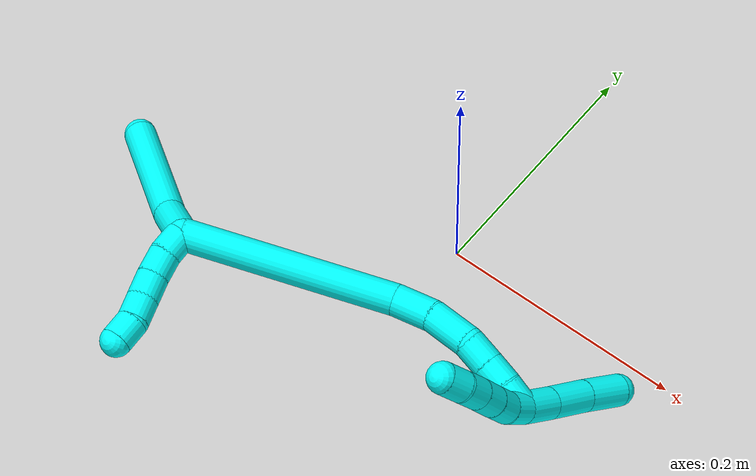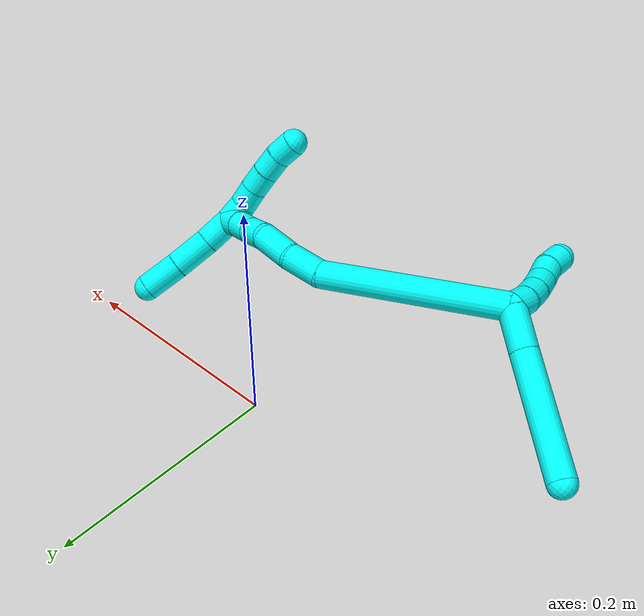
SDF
<sdf version="1.7">
 <world name="default">
  <model name="3">
   <static>0</static>
   <link name="3">
    <collision name="collision-cylinder-e_1_2_8">
     <pose>-0.010146 -0.012704 0.010542 0.878161 -0.551076 -0.264028</pose>
     <geometry><cylinder><radius>0.0125</radius><length>0.038754</length></cylinder></geometry>
     <surface>
      <friction><ode><mu>1.16</mu><mu2>1.16</mu2><slip1>0</slip1><slip2>0</slip2></ode></friction>
      <contact><ode><kp>1e+06</kp><kd>1</kd><max_vel>0</max_vel><min_depth>0.001</min_depth></ode></contact>
     </surface>
    </collision>
    <visual name="visual-cylinder-e_1_2_8">
     <pose>-0.010146 -0.012704 0.010542 0.878161 -0.551076 -0.264028</pose>
     <geometry><cylinder><radius>0.0125</radius><length>0.038754</length></cylinder></geometry>
     <material><ambient>0.003922 1 0.996078 1</ambient></material>
    </visual>
    <collision name="collision-cylinder-e_2_8_6">
     <pose>-0.041758 -0.069423 0.047464 1.03084 -0.3962 -0.226457</pose>
     <geometry><cylinder><radius>0.0125</radius><length>0.111246</length></cylinder></geometry>
     <surface>
      <friction><ode><mu>1.16</mu><mu2>1.16</mu2><slip1>0</slip1><slip2>0</slip2></ode></friction>
      <contact><ode><kp>1e+06</kp><kd>1</kd><max_vel>0</max_vel><min_depth>0.001</min_depth></ode></contact>
     </surface>
    </collision>
    <visual name="visual-cylinder-e_2_8_6">
     <pose>-0.041758 -0.069423 0.047464 1.03084 -0.3962 -0.226457</pose>
     <geometry><cylinder><radius>0.0125</radius><length>0.111246</length></cylinder></geometry>
     <material><ambient>0.003922 1 0.996078 1</ambient></material>
    </visual>
    <collision name="collision-cylinder-e_1_2_9">
     <pose>-0.006503 0.005902 -0.004784 -2.25194 -0.707915 1.31884</pose>
     <geometry><cylinder><radius>0.0125</radius><length>0.02</length></cylinder></geometry>
     <surface>
      <friction><ode><mu>1.16</mu><mu2>1.16</mu2><slip1>0</slip1><slip2>0</slip2></ode></friction>
      <contact><ode><kp>1e+06</kp><kd>1</kd><max_vel>0</max_vel><min_depth>0.001</min_depth></ode></contact>
     </surface>
    </collision>
    <visual name="visual-cylinder-e_1_2_9">
     <pose>-0.006503 0.005902 -0.004784 -2.25194 -0.707915 1.31884</pose>
     <geometry><cylinder><radius>0.0125</radius><length>0.02</length></cylinder></geometry>
     <material><ambient>0.003922 1 0.996078 1</ambient></material>
    </visual>
    <collision name="collision-cylinder-e_2_9_10">
     <pose>-0.018055 0.019227 -0.013971 -2.10622 -0.529394 0.888468</pose>
     <geometry><cylinder><radius>0.0125</radius><length>0.02</length></cylinder></geometry>
     <surface>
      <friction><ode><mu>1.16</mu><mu2>1.16</mu2><slip1>0</slip1><slip2>0</slip2></ode></friction>
      <contact><ode><kp>1e+06</kp><kd>1</kd><max_vel>0</max_vel><min_depth>0.001</min_depth></ode></contact>
     </surface>
    </collision>
    <visual name="visual-cylinder-e_2_9_10">
     <pose>-0.018055 0.019227 -0.013971 -2.10622 -0.529394 0.888468</pose>
     <geometry><cylinder><radius>0.0125</radius><length>0.02</length></cylinder></geometry>
     <material><ambient>0.003922 1 0.996078 1</ambient></material>
    </visual>
    <collision name="collision-cylinder-e_3_10_11">
     <pose>-0.027275 0.034577 -0.022822 -2.082 -0.430153 0.714065</pose>
     <geometry><cylinder><radius>0.0125</radius><length>0.02</length></cylinder></geometry>
     <surface>
      <friction><ode><mu>1.16</mu><mu2>1.16</mu2><slip1>0</slip1><slip2>0</slip2></ode></friction>
      <contact><ode><kp>1e+06</kp><kd>1</kd><max_vel>0</max_vel><min_depth>0.001</min_depth></ode></contact>
     </surface>
    </collision>
    <visual name="visual-cylinder-e_3_10_11">
     <pose>-0.027275 0.034577 -0.022822 -2.082 -0.430153 0.714065</pose>
     <geometry><cylinder><radius>0.0125</radius><length>0.02</length></cylinder></geometry>
     <material><ambient>0.003922 1 0.996078 1</ambient></material>
    </visual>
    <collision name="collision-cylinder-e_4_11_12">
     <pose>-0.034556 0.050363 -0.032612 -2.16798 -0.316342 0.58539</pose>
     <geometry><cylinder><radius>0.0125</radius><length>0.02</length></cylinder></geometry>
     <surface>
      <friction><ode><mu>1.16</mu><mu2>1.16</mu2><slip1>0</slip1><slip2>0</slip2></ode></friction>
      <contact><ode><kp>1e+06</kp><kd>1</kd><max_vel>0</max_vel><min_depth>0.001</min_depth></ode></contact>
     </surface>
    </collision>
    <visual name="visual-cylinder-e_4_11_12">
     <pose>-0.034556 0.050363 -0.032612 -2.16798 -0.316342 0.58539</pose>
     <geometry><cylinder><radius>0.0125</radius><length>0.02</length></cylinder></geometry>
     <material><ambient>0.003922 1 0.996078 1</ambient></material>
    </visual>
    <collision name="collision-cylinder-e_5_12_5">
     <pose>-0.042961 0.064282 -0.043894 -2.34597 -0.557893 1.19652</pose>
     <geometry><cylinder><radius>0.0125</radius><length>0.02</length></cylinder></geometry>
     <surface>
      <friction><ode><mu>1.16</mu><mu2>1.16</mu2><slip1>0</slip1><slip2>0</slip2></ode></friction>
      <contact><ode><kp>1e+06</kp><kd>1</kd><max_vel>0</max_vel><min_depth>0.001</min_depth></ode></contact>
     </surface>
    </collision>
    <visual name="visual-cylinder-e_5_12_5">
     <pose>-0.042961 0.064282 -0.043894 -2.34597 -0.557893 1.19652</pose>
     <geometry><cylinder><radius>0.0125</radius><length>0.02</length></cylinder></geometry>
     <material><ambient>0.003922 1 0.996078 1</ambient></material>
    </visual>
    <collision name="collision-cylinder-e_1_2_13">
     <pose>0.057502 0.04575 0.041172 -0.838018 0.751427 -0.347815</pose>
     <geometry><cylinder><radius>0.0125</radius><length>0.16846</length></cylinder></geometry>
     <surface>
      <friction><ode><mu>1.16</mu><mu2>1.16</mu2><slip1>0</slip1><slip2>0</slip2></ode></friction>
      <contact><ode><kp>1e+06</kp><kd>1</kd><max_vel>0</max_vel><min_depth>0.001</min_depth></ode></contact>
     </surface>
    </collision>
    <visual name="visual-cylinder-e_1_2_13">
     <pose>0.057502 0.04575 0.041172 -0.838018 0.751427 -0.347815</pose>
     <geometry><cylinder><radius>0.0125</radius><length>0.16846</length></cylinder></geometry>
     <material><ambient>0.003922 1 0.996078 1</ambient></material>
    </visual>
    <collision name="collision-cylinder-e_2_13_14">
     <pose>0.127043 0.102357 0.085191 -1.31429 0.820355 -0.647395</pose>
     <geometry><cylinder><radius>0.0125</radius><length>0.032919</length></cylinder></geometry>
     <surface>
      <friction><ode><mu>1.16</mu><mu2>1.16</mu2><slip1>0</slip1><slip2>0</slip2></ode></friction>
      <contact><ode><kp>1e+06</kp><kd>1</kd><max_vel>0</max_vel><min_depth>0.001</min_depth></ode></contact>
     </surface>
    </collision>
    <visual name="visual-cylinder-e_2_13_14">
     <pose>0.127043 0.102357 0.085191 -1.31429 0.820355 -0.647395</pose>
     <geometry><cylinder><radius>0.0125</radius><length>0.032919</length></cylinder></geometry>
     <material><ambient>0.003922 1 0.996078 1</ambient></material>
    </visual>
    <collision name="collision-cylinder-e_3_14_15">
     <pose>0.149493 0.127349 0.089805 -1.44647 0.631225 -0.561305</pose>
     <geometry><cylinder><radius>0.0125</radius><length>0.035288</length></cylinder></geometry>
     <surface>
      <friction><ode><mu>1.16</mu><mu2>1.16</mu2><slip1>0</slip1><slip2>0</slip2></ode></friction>
      <contact><ode><kp>1e+06</kp><kd>1</kd><max_vel>0</max_vel><min_depth>0.001</min_depth></ode></contact>
     </surface>
    </collision>
    <visual name="visual-cylinder-e_3_14_15">
     <pose>0.149493 0.127349 0.089805 -1.44647 0.631225 -0.561305</pose>
     <geometry><cylinder><radius>0.0125</radius><length>0.035288</length></cylinder></geometry>
     <material><ambient>0.003922 1 0.996078 1</ambient></material>
    </visual>
    <collision name="collision-cylinder-e_4_15_16">
     <pose>0.163413 0.151464 0.094722 -1.26512 0.323319 -0.237964</pose>
     <geometry><cylinder><radius>0.0125</radius><length>0.022077</length></cylinder></geometry>
     <surface>
      <friction><ode><mu>1.16</mu><mu2>1.16</mu2><slip1>0</slip1><slip2>0</slip2></ode></friction>
      <contact><ode><kp>1e+06</kp><kd>1</kd><max_vel>0</max_vel><min_depth>0.001</min_depth></ode></contact>
     </surface>
    </collision>
    <visual name="visual-cylinder-e_4_15_16">
     <pose>0.163413 0.151464 0.094722 -1.26512 0.323319 -0.237964</pose>
     <geometry><cylinder><radius>0.0125</radius><length>0.022077</length></cylinder></geometry>
     <material><ambient>0.003922 1 0.996078 1</ambient></material>
    </visual>
    <collision name="collision-cylinder-e_5_16_17">
     <pose>0.170294 0.170879 0.100361 -1.31279 0.332931 -0.257435</pose>
     <geometry><cylinder><radius>0.0125</radius><length>0.020647</length></cylinder></geometry>
     <surface>
      <friction><ode><mu>1.16</mu><mu2>1.16</mu2><slip1>0</slip1><slip2>0</slip2></ode></friction>
      <contact><ode><kp>1e+06</kp><kd>1</kd><max_vel>0</max_vel><min_depth>0.001</min_depth></ode></contact>
     </surface>
    </collision>
    <visual name="visual-cylinder-e_5_16_17">
     <pose>0.170294 0.170879 0.100361 -1.31279 0.332931 -0.257435</pose>
     <geometry><cylinder><radius>0.0125</radius><length>0.020647</length></cylinder></geometry>
     <material><ambient>0.003922 1 0.996078 1</ambient></material>
    </visual>
    <collision name="collision-cylinder-e_6_17_1">
     <pose>0.176087 0.189803 0.106056 -1.24509 0.236979 -0.170479</pose>
     <geometry><cylinder><radius>0.0125</radius><length>0.02061</length></cylinder></geometry>
     <surface>
      <friction><ode><mu>1.16</mu><mu2>1.16</mu2><slip1>0</slip1><slip2>0</slip2></ode></friction>
      <contact><ode><kp>1e+06</kp><kd>1</kd><max_vel>0</max_vel><min_depth>0.001</min_depth></ode></contact>
     </surface>
    </collision>
    <visual name="visual-cylinder-e_6_17_1">
     <pose>0.176087 0.189803 0.106056 -1.24509 0.236979 -0.170479</pose>
     <geometry><cylinder><radius>0.0125</radius><length>0.02061</length></cylinder></geometry>
     <material><ambient>0.003922 1 0.996078 1</ambient></material>
    </visual>
    <collision name="collision-cylinder-e_1_1_18">
     <pose>0.181933 0.198154 0.123168 0.081738 0.240854 0.009897</pose>
     <geometry><cylinder><radius>0.0125</radius><length>0.028738</length></cylinder></geometry>
     <surface>
      <friction><ode><mu>1.16</mu><mu2>1.16</mu2><slip1>0</slip1><slip2>0</slip2></ode></friction>
      <contact><ode><kp>1e+06</kp><kd>1</kd><max_vel>0</max_vel><min_depth>0.001</min_depth></ode></contact>
     </surface>
    </collision>
    <visual name="visual-cylinder-e_1_1_18">
     <pose>0.181933 0.198154 0.123168 0.081738 0.240854 0.009897</pose>
     <geometry><cylinder><radius>0.0125</radius><length>0.028738</length></cylinder></geometry>
     <material><ambient>0.003922 1 0.996078 1</ambient></material>
    </visual>
    <collision name="collision-cylinder-e_2_18_19">
     <pose>0.190779 0.195421 0.154201 0.092781 0.305168 0.014278</pose>
     <geometry><cylinder><radius>0.0125</radius><length>0.036066</length></cylinder></geometry>
     <surface>
      <friction><ode><mu>1.16</mu><mu2>1.16</mu2><slip1>0</slip1><slip2>0</slip2></ode></friction>
      <contact><ode><kp>1e+06</kp><kd>1</kd><max_vel>0</max_vel><min_depth>0.001</min_depth></ode></contact>
     </surface>
    </collision>
    <visual name="visual-cylinder-e_2_18_19">
     <pose>0.190779 0.195421 0.154201 0.092781 0.305168 0.014278</pose>
     <geometry><cylinder><radius>0.0125</radius><length>0.036066</length></cylinder></geometry>
     <material><ambient>0.003922 1 0.996078 1</ambient></material>
    </visual>
    <collision name="collision-cylinder-e_3_19_4">
     <pose>0.201953 0.192963 0.187935 0.052009 0.333195 0.008748</pose>
     <geometry><cylinder><radius>0.0125</radius><length>0.035197</length></cylinder></geometry>
     <surface>
      <friction><ode><mu>1.16</mu><mu2>1.16</mu2><slip1>0</slip1><slip2>0</slip2></ode></friction>
      <contact><ode><kp>1e+06</kp><kd>1</kd><max_vel>0</max_vel><min_depth>0.001</min_depth></ode></contact>
     </surface>
    </collision>
    <visual name="visual-cylinder-e_3_19_4">
     <pose>0.201953 0.192963 0.187935 0.052009 0.333195 0.008748</pose>
     <geometry><cylinder><radius>0.0125</radius><length>0.035197</length></cylinder></geometry>
     <material><ambient>0.003922 1 0.996078 1</ambient></material>
    </visual>
    <collision name="collision-cylinder-e_1_1_20">
     <pose>0.177704 0.199315 0.099293 -3.13934 -0.080224 3.08559</pose>
     <geometry><cylinder><radius>0.0125</radius><length>0.02</length></cylinder></geometry>
     <surface>
      <friction><ode><mu>1.16</mu><mu2>1.16</mu2><slip1>0</slip1><slip2>0</slip2></ode></friction>
      <contact><ode><kp>1e+06</kp><kd>1</kd><max_vel>0</max_vel><min_depth>0.001</min_depth></ode></contact>
     </surface>
    </collision>
    <visual name="visual-cylinder-e_1_1_20">
     <pose>0.177704 0.199315 0.099293 -3.13934 -0.080224 3.08559</pose>
     <geometry><cylinder><radius>0.0125</radius><length>0.02</length></cylinder></geometry>
     <material><ambient>0.003922 1 0.996078 1</ambient></material>
    </visual>
    <collision name="collision-cylinder-e_2_20_21">
     <pose>0.17772 0.197466 0.079536 2.95266 0.081835 0.815736</pose>
     <geometry><cylinder><radius>0.0125</radius><length>0.02</length></cylinder></geometry>
     <surface>
      <friction><ode><mu>1.16</mu><mu2>1.16</mu2><slip1>0</slip1><slip2>0</slip2></ode></friction>
      <contact><ode><kp>1e+06</kp><kd>1</kd><max_vel>0</max_vel><min_depth>0.001</min_depth></ode></contact>
     </surface>
    </collision>
    <visual name="visual-cylinder-e_2_20_21">
     <pose>0.17772 0.197466 0.079536 2.95266 0.081835 0.815736</pose>
     <geometry><cylinder><radius>0.0125</radius><length>0.02</length></cylinder></geometry>
     <material><ambient>0.003922 1 0.996078 1</ambient></material>
    </visual>
    <collision name="collision-cylinder-e_3_21_22">
     <pose>0.179119 0.193206 0.060053 2.90002 0.058105 0.469994</pose>
     <geometry><cylinder><radius>0.0125</radius><length>0.02</length></cylinder></geometry>
     <surface>
      <friction><ode><mu>1.16</mu><mu2>1.16</mu2><slip1>0</slip1><slip2>0</slip2></ode></friction>
      <contact><ode><kp>1e+06</kp><kd>1</kd><max_vel>0</max_vel><min_depth>0.001</min_depth></ode></contact>
     </surface>
    </collision>
    <visual name="visual-cylinder-e_3_21_22">
     <pose>0.179119 0.193206 0.060053 2.90002 0.058105 0.469994</pose>
     <geometry><cylinder><radius>0.0125</radius><length>0.02</length></cylinder></geometry>
     <material><ambient>0.003922 1 0.996078 1</ambient></material>
    </visual>
    <collision name="collision-cylinder-e_4_22_23">
     <pose>0.179909 0.188572 0.040618 2.91508 0.020978 0.183926</pose>
     <geometry><cylinder><radius>0.0125</radius><length>0.02</length></cylinder></geometry>
     <surface>
      <friction><ode><mu>1.16</mu><mu2>1.16</mu2><slip1>0</slip1><slip2>0</slip2></ode></friction>
      <contact><ode><kp>1e+06</kp><kd>1</kd><max_vel>0</max_vel><min_depth>0.001</min_depth></ode></contact>
     </surface>
    </collision>
    <visual name="visual-cylinder-e_4_22_23">
     <pose>0.179909 0.188572 0.040618 2.91508 0.020978 0.183926</pose>
     <geometry><cylinder><radius>0.0125</radius><length>0.02</length></cylinder></geometry>
     <material><ambient>0.003922 1 0.996078 1</ambient></material>
    </visual>
    <collision name="collision-cylinder-e_5_23_3">
     <pose>0.178806 0.182902 0.021572 2.78882 -0.131663 -0.708543</pose>
     <geometry><cylinder><radius>0.0125</radius><length>0.02</length></cylinder></geometry>
     <surface>
      <friction><ode><mu>1.16</mu><mu2>1.16</mu2><slip1>0</slip1><slip2>0</slip2></ode></friction>
      <contact><ode><kp>1e+06</kp><kd>1</kd><max_vel>0</max_vel><min_depth>0.001</min_depth></ode></contact>
     </surface>
    </collision>
    <visual name="visual-cylinder-e_5_23_3">
     <pose>0.178806 0.182902 0.021572 2.78882 -0.131663 -0.708543</pose>
     <geometry><cylinder><radius>0.0125</radius><length>0.02</length></cylinder></geometry>
     <material><ambient>0.003922 1 0.996078 1</ambient></material>
    </visual>
    <collision name="collision-sphere-3">
     <pose>0.177493 0.179477 0.01227 0 -0 0</pose>
     <geometry><sphere><radius>0.0125</radius></sphere></geometry>
     <surface>
      <friction><ode><mu>1.16</mu><mu2>1.16</mu2><slip1>0</slip1><slip2>0</slip2></ode></friction>
      <contact><ode><kp>1e+06</kp><kd>1</kd><max_vel>0</max_vel><min_depth>0.001</min_depth></ode></contact>
     </surface>
    </collision>
    <visual name="visual-sphere-3">
     <pose>0.177493 0.179477 0.01227 0 -0 0</pose>
     <geometry><sphere><radius>0.0125</radius></sphere></geometry>
     <material><ambient>0.003922 1 0.996078 1</ambient></material>
    </visual>
    <collision name="collision-sphere-23">
     <pose>0.180119 0.186327 0.030875 0 -0 0</pose>
     <geometry><sphere><radius>0.0125</radius></sphere></geometry>
     <surface>
      <friction><ode><mu>1.16</mu><mu2>1.16</mu2><slip1>0</slip1><slip2>0</slip2></ode></friction>
      <contact><ode><kp>1e+06</kp><kd>1</kd><max_vel>0</max_vel><min_depth>0.001</min_depth></ode></contact>
     </surface>
    </collision>
    <visual name="visual-sphere-23">
     <pose>0.180119 0.186327 0.030875 0 -0 0</pose>
     <geometry><sphere><radius>0.0125</radius></sphere></geometry>
     <material><ambient>0.003922 1 0.996078 1</ambient></material>
    </visual>
    <collision name="collision-sphere-22">
     <pose>0.179699 0.190818 0.05036 0 -0 0</pose>
     <geometry><sphere><radius>0.0125</radius></sphere></geometry>
     <surface>
      <friction><ode><mu>1.16</mu><mu2>1.16</mu2><slip1>0</slip1><slip2>0</slip2></ode></friction>
      <contact><ode><kp>1e+06</kp><kd>1</kd><max_vel>0</max_vel><min_depth>0.001</min_depth></ode></contact>
     </surface>
    </collision>
    <visual name="visual-sphere-22">
     <pose>0.179699 0.190818 0.05036 0 -0 0</pose>
     <geometry><sphere><radius>0.0125</radius></sphere></geometry>
     <material><ambient>0.003922 1 0.996078 1</ambient></material>
    </visual>
    <collision name="collision-sphere-21">
     <pose>0.178538 0.195594 0.069747 0 -0 0</pose>
     <geometry><sphere><radius>0.0125</radius></sphere></geometry>
     <surface>
      <friction><ode><mu>1.16</mu><mu2>1.16</mu2><slip1>0</slip1><slip2>0</slip2></ode></friction>
      <contact><ode><kp>1e+06</kp><kd>1</kd><max_vel>0</max_vel><min_depth>0.001</min_depth></ode></contact>
     </surface>
    </collision>
    <visual name="visual-sphere-21">
     <pose>0.178538 0.195594 0.069747 0 -0 0</pose>
     <geometry><sphere><radius>0.0125</radius></sphere></geometry>
     <material><ambient>0.003922 1 0.996078 1</ambient></material>
    </visual>
    <collision name="collision-sphere-20">
     <pose>0.176903 0.199338 0.089325 0 -0 0</pose>
     <geometry><sphere><radius>0.0125</radius></sphere></geometry>
     <surface>
      <friction><ode><mu>1.16</mu><mu2>1.16</mu2><slip1>0</slip1><slip2>0</slip2></ode></friction>
      <contact><ode><kp>1e+06</kp><kd>1</kd><max_vel>0</max_vel><min_depth>0.001</min_depth></ode></contact>
     </surface>
    </collision>
    <visual name="visual-sphere-20">
     <pose>0.176903 0.199338 0.089325 0 -0 0</pose>
     <geometry><sphere><radius>0.0125</radius></sphere></geometry>
     <material><ambient>0.003922 1 0.996078 1</ambient></material>
    </visual>
    <collision name="collision-sphere-4">
     <pose>0.207708 0.192098 0.204543 0 -0 0</pose>
     <geometry><sphere><radius>0.0125</radius></sphere></geometry>
     <surface>
      <friction><ode><mu>1.16</mu><mu2>1.16</mu2><slip1>0</slip1><slip2>0</slip2></ode></friction>
      <contact><ode><kp>1e+06</kp><kd>1</kd><max_vel>0</max_vel><min_depth>0.001</min_depth></ode></contact>
     </surface>
    </collision>
    <visual name="visual-sphere-4">
     <pose>0.207708 0.192098 0.204543 0 -0 0</pose>
     <geometry><sphere><radius>0.0125</radius></sphere></geometry>
     <material><ambient>0.003922 1 0.996078 1</ambient></material>
    </visual>
    <collision name="collision-sphere-11">
     <pose>-0.031445 0.042504 -0.027268 0 -0 0</pose>
     <geometry><sphere><radius>0.0125</radius></sphere></geometry>
     <surface>
      <friction><ode><mu>1.16</mu><mu2>1.16</mu2><slip1>0</slip1><slip2>0</slip2></ode></friction>
      <contact><ode><kp>1e+06</kp><kd>1</kd><max_vel>0</max_vel><min_depth>0.001</min_depth></ode></contact>
     </surface>
    </collision>
    <visual name="visual-sphere-11">
     <pose>-0.031445 0.042504 -0.027268 0 -0 0</pose>
     <geometry><sphere><radius>0.0125</radius></sphere></geometry>
     <material><ambient>0.003922 1 0.996078 1</ambient></material>
    </visual>
    <collision name="collision-sphere-10">
     <pose>-0.023105 0.02665 -0.018375 0 -0 0</pose>
     <geometry><sphere><radius>0.0125</radius></sphere></geometry>
     <surface>
      <friction><ode><mu>1.16</mu><mu2>1.16</mu2><slip1>0</slip1><slip2>0</slip2></ode></friction>
      <contact><ode><kp>1e+06</kp><kd>1</kd><max_vel>0</max_vel><min_depth>0.001</min_depth></ode></contact>
     </surface>
    </collision>
    <visual name="visual-sphere-10">
     <pose>-0.023105 0.02665 -0.018375 0 -0 0</pose>
     <geometry><sphere><radius>0.0125</radius></sphere></geometry>
     <material><ambient>0.003922 1 0.996078 1</ambient></material>
    </visual>
    <collision name="collision-sphere-6">
     <pose>-0.063223 -0.113436 0.073844 0 -0 0</pose>
     <geometry><sphere><radius>0.0125</radius></sphere></geometry>
     <surface>
      <friction><ode><mu>1.16</mu><mu2>1.16</mu2><slip1>0</slip1><slip2>0</slip2></ode></friction>
      <contact><ode><kp>1e+06</kp><kd>1</kd><max_vel>0</max_vel><min_depth>0.001</min_depth></ode></contact>
     </surface>
    </collision>
    <visual name="visual-sphere-6">
     <pose>-0.063223 -0.113436 0.073844 0 -0 0</pose>
     <geometry><sphere><radius>0.0125</radius></sphere></geometry>
     <material><ambient>0.003922 1 0.996078 1</ambient></material>
    </visual>
    <collision name="collision-sphere-9">
     <pose>-0.013005 0.011804 -0.009568 0 -0 0</pose>
     <geometry><sphere><radius>0.0125</radius></sphere></geometry>
     <surface>
      <friction><ode><mu>1.16</mu><mu2>1.16</mu2><slip1>0</slip1><slip2>0</slip2></ode></friction>
      <contact><ode><kp>1e+06</kp><kd>1</kd><max_vel>0</max_vel><min_depth>0.001</min_depth></ode></contact>
     </surface>
    </collision>
    <visual name="visual-sphere-9">
     <pose>-0.013005 0.011804 -0.009568 0 -0 0</pose>
     <geometry><sphere><radius>0.0125</radius></sphere></geometry>
     <material><ambient>0.003922 1 0.996078 1</ambient></material>
    </visual>
    <collision name="collision-sphere-2">
     <geometry><sphere><radius>0.0125</radius></sphere></geometry>
     <surface>
      <friction><ode><mu>1.16</mu><mu2>1.16</mu2><slip1>0</slip1><slip2>0</slip2></ode></friction>
      <contact><ode><kp>1e+06</kp><kd>1</kd><max_vel>0</max_vel><min_depth>0.001</min_depth></ode></contact>
     </surface>
    </collision>
    <visual name="visual-sphere-2">
     <geometry><sphere><radius>0.0125</radius></sphere></geometry>
     <material><ambient>0.003922 1 0.996078 1</ambient></material>
    </visual>
    <collision name="collision-sphere-19">
     <pose>0.196197 0.193827 0.171327 0 -0 0</pose>
     <geometry><sphere><radius>0.0125</radius></sphere></geometry>
     <surface>
      <friction><ode><mu>1.16</mu><mu2>1.16</mu2><slip1>0</slip1><slip2>0</slip2></ode></friction>
      <contact><ode><kp>1e+06</kp><kd>1</kd><max_vel>0</max_vel><min_depth>0.001</min_depth></ode></contact>
     </surface>
    </collision>
    <visual name="visual-sphere-19">
     <pose>0.196197 0.193827 0.171327 0 -0 0</pose>
     <geometry><sphere><radius>0.0125</radius></sphere></geometry>
     <material><ambient>0.003922 1 0.996078 1</ambient></material>
    </visual>
    <collision name="collision-sphere-8">
     <pose>-0.020292 -0.025409 0.021084 0 -0 0</pose>
     <geometry><sphere><radius>0.0125</radius></sphere></geometry>
     <surface>
      <friction><ode><mu>1.16</mu><mu2>1.16</mu2><slip1>0</slip1><slip2>0</slip2></ode></friction>
      <contact><ode><kp>1e+06</kp><kd>1</kd><max_vel>0</max_vel><min_depth>0.001</min_depth></ode></contact>
     </surface>
    </collision>
    <visual name="visual-sphere-8">
     <pose>-0.020292 -0.025409 0.021084 0 -0 0</pose>
     <geometry><sphere><radius>0.0125</radius></sphere></geometry>
     <material><ambient>0.003922 1 0.996078 1</ambient></material>
    </visual>
    <collision name="collision-sphere-12">
     <pose>-0.037667 0.058222 -0.037956 0 -0 0</pose>
     <geometry><sphere><radius>0.0125</radius></sphere></geometry>
     <surface>
      <friction><ode><mu>1.16</mu><mu2>1.16</mu2><slip1>0</slip1><slip2>0</slip2></ode></friction>
      <contact><ode><kp>1e+06</kp><kd>1</kd><max_vel>0</max_vel><min_depth>0.001</min_depth></ode></contact>
     </surface>
    </collision>
    <visual name="visual-sphere-12">
     <pose>-0.037667 0.058222 -0.037956 0 -0 0</pose>
     <geometry><sphere><radius>0.0125</radius></sphere></geometry>
     <material><ambient>0.003922 1 0.996078 1</ambient></material>
    </visual>
    <collision name="collision-sphere-5">
     <pose>-0.048255 0.070342 -0.049831 0 -0 0</pose>
     <geometry><sphere><radius>0.0125</radius></sphere></geometry>
     <surface>
      <friction><ode><mu>1.16</mu><mu2>1.16</mu2><slip1>0</slip1><slip2>0</slip2></ode></friction>
      <contact><ode><kp>1e+06</kp><kd>1</kd><max_vel>0</max_vel><min_depth>0.001</min_depth></ode></contact>
     </surface>
    </collision>
    <visual name="visual-sphere-5">
     <pose>-0.048255 0.070342 -0.049831 0 -0 0</pose>
     <geometry><sphere><radius>0.0125</radius></sphere></geometry>
     <material><ambient>0.003922 1 0.996078 1</ambient></material>
    </visual>
    <collision name="collision-sphere-13">
     <pose>0.115004 0.0915 0.082344 0 -0 0</pose>
     <geometry><sphere><radius>0.0125</radius></sphere></geometry>
     <surface>
      <friction><ode><mu>1.16</mu><mu2>1.16</mu2><slip1>0</slip1><slip2>0</slip2></ode></friction>
      <contact><ode><kp>1e+06</kp><kd>1</kd><max_vel>0</max_vel><min_depth>0.001</min_depth></ode></contact>
     </surface>
    </collision>
    <visual name="visual-sphere-13">
     <pose>0.115004 0.0915 0.082344 0 -0 0</pose>
     <geometry><sphere><radius>0.0125</radius></sphere></geometry>
     <material><ambient>0.003922 1 0.996078 1</ambient></material>
    </visual>
    <collision name="collision-sphere-14">
     <pose>0.139081 0.113215 0.088039 0 -0 0</pose>
     <geometry><sphere><radius>0.0125</radius></sphere></geometry>
     <surface>
      <friction><ode><mu>1.16</mu><mu2>1.16</mu2><slip1>0</slip1><slip2>0</slip2></ode></friction>
      <contact><ode><kp>1e+06</kp><kd>1</kd><max_vel>0</max_vel><min_depth>0.001</min_depth></ode></contact>
     </surface>
    </collision>
    <visual name="visual-sphere-14">
     <pose>0.139081 0.113215 0.088039 0 -0 0</pose>
     <geometry><sphere><radius>0.0125</radius></sphere></geometry>
     <material><ambient>0.003922 1 0.996078 1</ambient></material>
    </visual>
    <collision name="collision-sphere-15">
     <pose>0.159905 0.141483 0.091572 0 -0 0</pose>
     <geometry><sphere><radius>0.0125</radius></sphere></geometry>
     <surface>
      <friction><ode><mu>1.16</mu><mu2>1.16</mu2><slip1>0</slip1><slip2>0</slip2></ode></friction>
      <contact><ode><kp>1e+06</kp><kd>1</kd><max_vel>0</max_vel><min_depth>0.001</min_depth></ode></contact>
     </surface>
    </collision>
    <visual name="visual-sphere-15">
     <pose>0.159905 0.141483 0.091572 0 -0 0</pose>
     <geometry><sphere><radius>0.0125</radius></sphere></geometry>
     <material><ambient>0.003922 1 0.996078 1</ambient></material>
    </visual>
    <collision name="collision-sphere-16">
     <pose>0.16692 0.161445 0.097871 0 -0 0</pose>
     <geometry><sphere><radius>0.0125</radius></sphere></geometry>
     <surface>
      <friction><ode><mu>1.16</mu><mu2>1.16</mu2><slip1>0</slip1><slip2>0</slip2></ode></friction>
      <contact><ode><kp>1e+06</kp><kd>1</kd><max_vel>0</max_vel><min_depth>0.001</min_depth></ode></contact>
     </surface>
    </collision>
    <visual name="visual-sphere-16">
     <pose>0.16692 0.161445 0.097871 0 -0 0</pose>
     <geometry><sphere><radius>0.0125</radius></sphere></geometry>
     <material><ambient>0.003922 1 0.996078 1</ambient></material>
    </visual>
    <collision name="collision-sphere-17">
     <pose>0.173667 0.180313 0.10285 0 -0 0</pose>
     <geometry><sphere><radius>0.0125</radius></sphere></geometry>
     <surface>
      <friction><ode><mu>1.16</mu><mu2>1.16</mu2><slip1>0</slip1><slip2>0</slip2></ode></friction>
      <contact><ode><kp>1e+06</kp><kd>1</kd><max_vel>0</max_vel><min_depth>0.001</min_depth></ode></contact>
     </surface>
    </collision>
    <visual name="visual-sphere-17">
     <pose>0.173667 0.180313 0.10285 0 -0 0</pose>
     <geometry><sphere><radius>0.0125</radius></sphere></geometry>
     <material><ambient>0.003922 1 0.996078 1</ambient></material>
    </visual>
    <collision name="collision-sphere-1">
     <pose>0.178506 0.199293 0.109261 0 -0 0</pose>
     <geometry><sphere><radius>0.0125</radius></sphere></geometry>
     <surface>
      <friction><ode><mu>1.16</mu><mu2>1.16</mu2><slip1>0</slip1><slip2>0</slip2></ode></friction>
      <contact><ode><kp>1e+06</kp><kd>1</kd><max_vel>0</max_vel><min_depth>0.001</min_depth></ode></contact>
     </surface>
    </collision>
    <visual name="visual-sphere-1">
     <pose>0.178506 0.199293 0.109261 0 -0 0</pose>
     <geometry><sphere><radius>0.0125</radius></sphere></geometry>
     <material><ambient>0.003922 1 0.996078 1</ambient></material>
    </visual>
    <collision name="collision-sphere-18">
     <pose>0.185361 0.197014 0.137076 0 -0 0</pose>
     <geometry><sphere><radius>0.0125</radius></sphere></geometry>
     <surface>
      <friction><ode><mu>1.16</mu><mu2>1.16</mu2><slip1>0</slip1><slip2>0</slip2></ode></friction>
      <contact><ode><kp>1e+06</kp><kd>1</kd><max_vel>0</max_vel><min_depth>0.001</min_depth></ode></contact>
     </surface>
    </collision>
    <visual name="visual-sphere-18">
     <pose>0.185361 0.197014 0.137076 0 -0 0</pose>
     <geometry><sphere><radius>0.0125</radius></sphere></geometry>
     <material><ambient>0.003922 1 0.996078 1</ambient></material>
    </visual>
    <inertial>
     <pose>0.079138 0.080519 0.059097 0 -0 0</pose>
     <mass>0.75</mass>
     <inertia>
      <ixx>0.000302</ixx>
      <ixy>0</ixy>
      <ixz>0</ixz>
      <iyy>0.000299</iyy>
      <iyz>0</iyz>
      <izz>-0.00036</izz>
     </inertia>
    </inertial>
   </link>
   <pose>-0.138634 -0.160337 0.091975 -2.76412 -0.662907 0.703106</pose>
  </model>
 </world>
</sdf>
